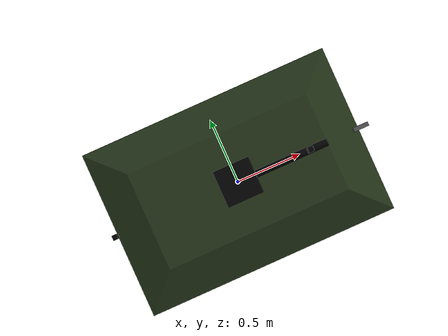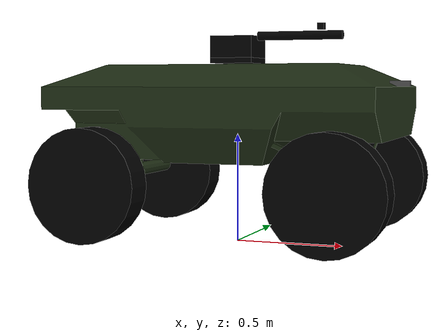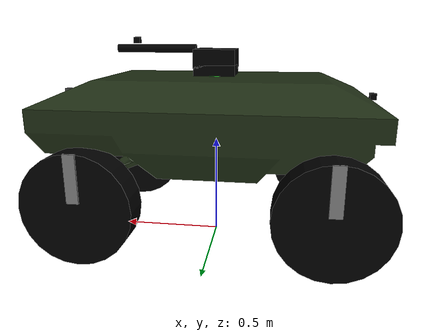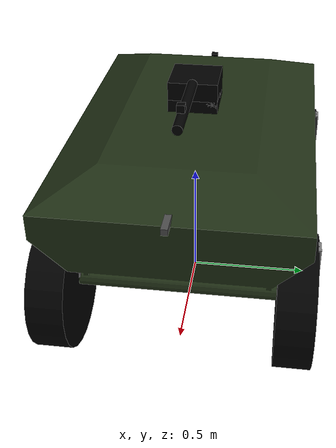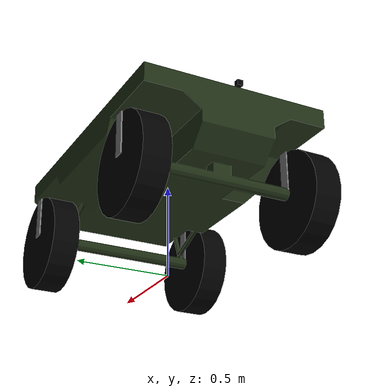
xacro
<?xml version="1.0" encoding="utf-8"?>
<robot name="karamuhafiz" xmlns:xacro="http://www.ros.org/wiki/xacro">

  <!-- gazebo_ros2_control'a verilecek controller yaml yolu (launch'tan gecilir) -->
  <xacro:arg name="controllers_yaml" default=""/>
  <!-- Simülasyon için ölçüm doğrulanana kadar muhafazakâr süspansiyon modeli.
       Gerçek stroke/yay/amortisör değerleri mekanik ölçümle değiştirilmelidir. -->
  <xacro:property name="suspension_stroke" value="0.08"/>
  <xacro:property name="suspension_spring" value="12000.0"/>
  <xacro:property name="suspension_damping" value="600.0"/>

  <!--  MALZEME TANIMLARI                                                 -->
  <material name="blue"><color rgba="0.1 0.1 0.8 1" /></material>
  <material name="black"><color rgba="0 0 0 1"/></material>
  <material name="grey"><color rgba="0.5 0.5 0.5 1"/></material>
  <material name="red"><color rgba="1 0 0 0.8"/></material>
  <material name="dark_grey"><color rgba="0.3 0.3 0.3 1"/></material>
  <material name="green"><color rgba="0.2 0.8 0.2 1"/></material>
  <material name="military_green"><color rgba="0.12 0.18 0.08 1.0"/></material>

  <!--  KM2 FİZİKSEL PARAMETRELERİ                                        -->
  <!--  DÜZELTME (KTR uyum): Önceki SolidWorks export'u FİZİKSEL DEĞİLDİ  -->
  <!--  (gövde 476 kg, teker 18.76 kg → toplam ~573 kg). Muhtemelen CAD   -->
  <!--  malzeme yoğunlukları hatalıydı. KTR §3.1.4 nihai kütle 120 kg.    -->
  <!--  Kütle/atalet ~×0.20 ölçeklenip toplam ~120 kg'a çekildi (I∝m,     -->
  <!--  geometri sabit). CoG yüksekliği KTR h=0.45 m'ye ayarlandı.        -->
  <!--  ⚠️ Bu bir TAHMİN; mekanik ekip doğru yoğunluklarla sw2urdf ile    -->
  <!--     yeniden export edince gerçek değerlerle değiştirin.            -->
  <!-- Gövde kütlesi: ~95 kg  (eski 476.48)                              -->
  <!-- Tekerlek kütlesi (ön): 4.0 kg  (arka): 4.2 kg  (eski 18.76/19.515)-->
  <!-- Tekerlek yarıçapı: 0.2575 m (KTR §3.1.5; tork hesaplarında bilinçli -->
  <!--   kullanılmış). Eski export 0.35 m FİZİKSEL DEĞİLDİ (0.70 m çap ~   -->
  <!--   araç boyu; aynı hatalı export 476 kg veriyordu). Genişlik: 0.143 m-->
  <!--   ⚠️ En iyi tahmin; mekanik ekip GERÇEK aracı ölçüp teyit edecek.   -->
  <!-- İz (track): 0.91 m   Dingil (wheelbase): 1.10 m                     -->
  <!-- Sürtünme μ: 1.0 (gerçekçi lastik-kuru zemin; eski 2.0 hack'ti)      -->

  <!--  BASE_FOOTPRINT (Zemin Referans Noktası)                           -->
  <link name="base_footprint"/>
  <joint name="base_footprint_joint" type="fixed">
    <parent link="base_footprint"/><child link="base_link"/>
    <!-- base_link = tekerlek ekseni + 3cm yer boslugu -->
    <!-- Teker r=0.2575 -> merkez abs=0.2875, alt=0.2875-0.2575=0.03 (zemin ustu) -->
    <origin xyz="0 0 0.2875" rpy="0 0 0"/>
  </joint>

  <!--  BASE_LINK - Ana Gövde (KM2 SolidWorks Verileri)                   -->
  <link name="base_link">
    <inertial>
      <!-- CoM: KTR CoG yüksekliği 0.45 m (zeminden). base_link z=0.2875 → origin z=+0.1625.
           Kütle 476.48→95 (×0.1994); atalet aynı oranla ölçeklendi (I∝m, geometri sabit). -->
      <origin xyz="0 0 0.1625" rpy="0 0 0"/>
      <mass value="95.0"/>
      <inertia ixx="16.33" ixy="0.0" ixz="0.0"
               iyy="21.37" iyz="0.187"
               izz="7.50"/>
    </inertial>
    <visual>
      <!-- SW mesh: -90 Z rot, mesh burun Y=0 tarafı -> ROS +X (ileri) -->
      <!-- offset: x=+0.75(merkez), z=+0.1(bottom=0) -->
      <origin xyz="0.75 0 0.1" rpy="0 0 -1.5708"/>
      <geometry><mesh filename="package://karamuhafiz_base/meshes/base_link.STL"/></geometry>
      <material name="military_green"/>
    </visual>
    <collision>
      <!-- Collision = mesh ortasinda, tekerleklerin USTUNDE ve Y'de tekerlekleri degmeyecek sekilde dar (0.60m) -->
      <origin xyz="0 0 0.27" rpy="0 0 0"/>
      <geometry><box size="1.4 0.60 0.10"/></geometry>
    </collision>
  </link>

  <!-- Gazebo govde rengi: Askeri yesil tonu (Olive Drab) -->
  <gazebo reference="base_link">
    <visual>
      <material>
        <ambient>0.12 0.18 0.08 1.0</ambient>
        <diffuse>0.12 0.18 0.08 1.0</diffuse>
        <specular>0.05 0.05 0.05 1.0</specular>
        <emissive>0.0 0.0 0.0 1.0</emissive>
      </material>
    </visual>
  </gazebo>

  <!--  TEKERLEK MAKROSU (KM2 Ölçüleri)                                   -->
  <!--  Ön tekerlekler: R=0.2575m, W=0.143m, m=4.0kg  (eski 0.35m/18.76kg fiziksel değildi) -->
  <!--  Arka tekerlekler: R=0.2575m, W=0.143m, m=4.2kg (eski 0.35m/19.515kg) -->
  <!--  iyy(front)=0.133 ixx=izz=0.073 | iyy(rear)=0.139 ixx=izz=0.077     -->
  <!--  Atalet silindir formülüyle (spin ekseni Y → iyy en büyük):        -->
  <!--   iyy=0.5·m·r² , ixx=izz=(1/12)·m·(3r²+h²)                          -->
  <xacro:macro name="km2_wheel_link" params="name mass ixx iyy izz">
    <link name="${name}_lw">
      <inertial>
        <mass value="${mass}"/>
        <inertia ixx="${ixx}" ixy="0" ixz="0"
                 iyy="${iyy}" iyz="0"
                 izz="${izz}"/>
      </inertial>
      <visual>
        <origin xyz="0 0 0" rpy="1.5708 0 0"/>
        <geometry><cylinder radius="0.2575" length="0.143"/></geometry>
        <material name="black"/>
      </visual>
      <visual>
        <origin xyz="0.0 0.073 0.147" rpy="0 0 0"/>
        <geometry><box size="0.055 0.012 0.22"/></geometry>
        <material name="grey"/>
      </visual>
      <collision>
        <origin xyz="0 0 0" rpy="1.5708 0 0"/>
        <geometry><cylinder radius="0.2575" length="0.143"/></geometry>
      </collision>
    </link>
    <gazebo reference="${name}_lw">
      <self_collide>false</self_collide>
      <mu1>3.0</mu1>
      <mu2>3.0</mu2>
      <kp>1000000.0</kp>
      <kd>10.0</kd>
      <minDepth>0.002</minDepth>
      <maxVel>20.0</maxVel>
      <material>Gazebo/DarkGrey</material>
    </gazebo>
  </xacro:macro>

  <!-- Ackermann surus: on tekerler direksiyon mafsali uzerinden, arka tekerler sabit aks uzerinden doner. -->
  <xacro:km2_wheel_link name="front_l" mass="4.0" ixx="0.073" iyy="0.133" izz="0.073"/>
  <xacro:km2_wheel_link name="front_r" mass="4.0" ixx="0.073" iyy="0.133" izz="0.073"/>
  <xacro:km2_wheel_link name="rear_l" mass="4.2" ixx="0.077" iyy="0.139" izz="0.077"/>
  <xacro:km2_wheel_link name="rear_r" mass="4.2" ixx="0.077" iyy="0.139" izz="0.077"/>

  <xacro:macro name="km2_suspension_link" params="name">
    <link name="${name}_suspension_link">
      <inertial>
        <mass value="0.5"/>
        <inertia ixx="0.002" ixy="0" ixz="0" iyy="0.002" iyz="0" izz="0.002"/>
      </inertial>
    </link>
    <gazebo reference="${name}_suspension_link">
      <self_collide>false</self_collide>
    </gazebo>
  </xacro:macro>

  <xacro:km2_suspension_link name="front_l"/>
  <xacro:km2_suspension_link name="front_r"/>
  <xacro:km2_suspension_link name="rear_l"/>
  <xacro:km2_suspension_link name="rear_r"/>

  <joint name="front_l_suspension_joint" type="prismatic">
    <parent link="base_link"/><child link="front_l_suspension_link"/>
    <origin xyz="0.55 0.455 0" rpy="0 0 0"/><axis xyz="0 0 1"/>
    <limit lower="-${suspension_stroke}" upper="${suspension_stroke}" effort="4000" velocity="1.0"/>
    <dynamics damping="${suspension_damping}" friction="5.0"/>
  </joint>
  <joint name="front_r_suspension_joint" type="prismatic">
    <parent link="base_link"/><child link="front_r_suspension_link"/>
    <origin xyz="0.55 -0.455 0" rpy="0 0 0"/><axis xyz="0 0 1"/>
    <limit lower="-${suspension_stroke}" upper="${suspension_stroke}" effort="4000" velocity="1.0"/>
    <dynamics damping="${suspension_damping}" friction="5.0"/>
  </joint>
  <joint name="rear_l_suspension_joint" type="prismatic">
    <parent link="base_link"/><child link="rear_l_suspension_link"/>
    <origin xyz="-0.55 0.455 0" rpy="0 0 0"/><axis xyz="0 0 1"/>
    <limit lower="-${suspension_stroke}" upper="${suspension_stroke}" effort="4000" velocity="1.0"/>
    <dynamics damping="${suspension_damping}" friction="5.0"/>
  </joint>
  <joint name="rear_r_suspension_joint" type="prismatic">
    <parent link="base_link"/><child link="rear_r_suspension_link"/>
    <origin xyz="-0.55 -0.455 0" rpy="0 0 0"/><axis xyz="0 0 1"/>
    <limit lower="-${suspension_stroke}" upper="${suspension_stroke}" effort="4000" velocity="1.0"/>
    <dynamics damping="${suspension_damping}" friction="5.0"/>
  </joint>

  <gazebo reference="front_l_suspension_joint"><spring_stiffness>${suspension_spring}</spring_stiffness><spring_reference>0</spring_reference></gazebo>
  <gazebo reference="front_r_suspension_joint"><spring_stiffness>${suspension_spring}</spring_stiffness><spring_reference>0</spring_reference></gazebo>
  <gazebo reference="rear_l_suspension_joint"><spring_stiffness>${suspension_spring}</spring_stiffness><spring_reference>0</spring_reference></gazebo>
  <gazebo reference="rear_r_suspension_joint"><spring_stiffness>${suspension_spring}</spring_stiffness><spring_reference>0</spring_reference></gazebo>

  <link name="front_l_steer_link">
    <inertial>
      <mass value="1.0"/>
      <inertia ixx="0.01" ixy="0" ixz="0" iyy="0.01" iyz="0" izz="0.01"/>
    </inertial>
  </link>
  <link name="front_r_steer_link">
    <inertial>
      <mass value="1.0"/>
      <inertia ixx="0.01" ixy="0" ixz="0" iyy="0.01" iyz="0" izz="0.01"/>
    </inertial>
  </link>

  <joint name="front_l_steer_joint" type="revolute">
    <parent link="front_l_suspension_link"/><child link="front_l_steer_link"/>
    <origin xyz="0 0 0" rpy="0 0 0"/>
    <axis xyz="0 0 1"/>
    <limit lower="-0.6" upper="0.6" effort="2000.0" velocity="2.0"/>
    <dynamics damping="2.0" friction="0.2"/>
  </joint>
  <joint name="front_r_steer_joint" type="revolute">
    <parent link="front_r_suspension_link"/><child link="front_r_steer_link"/>
    <origin xyz="0 0 0" rpy="0 0 0"/>
    <axis xyz="0 0 1"/>
    <limit lower="-0.6" upper="0.6" effort="2000.0" velocity="2.0"/>
    <dynamics damping="2.0" friction="0.2"/>
  </joint>

  <joint name="front_l_joint" type="continuous">
    <parent link="front_l_steer_link"/><child link="front_l_lw"/>
    <origin xyz="0 0 0" rpy="0 0 0"/>
    <axis xyz="0 1 0"/>
    <dynamics damping="0.1" friction="0.1"/>
  </joint>
  <joint name="front_r_joint" type="continuous">
    <parent link="front_r_steer_link"/><child link="front_r_lw"/>
    <origin xyz="0 0 0" rpy="0 0 0"/>
    <axis xyz="0 1 0"/>
    <dynamics damping="0.1" friction="0.1"/>
  </joint>
  <!-- Arka tahrik tekerleri: velocity motoru icin effort limiti SART (yoksa fmax=0,
       476kg arac surulemez, yokusta geri kayar). -->
  <joint name="rear_l_joint" type="continuous">
    <parent link="rear_l_suspension_link"/><child link="rear_l_lw"/>
    <origin xyz="0 0 0" rpy="0 0 0"/>
    <axis xyz="0 1 0"/>
    <!-- effort 1000->2000: rampada gecici tork talebi (kalkis + egim) icin headroom -->
    <limit effort="2000.0" velocity="30.0"/>
    <dynamics damping="0.1" friction="0.1"/>
  </joint>
  <joint name="rear_r_joint" type="continuous">
    <parent link="rear_r_suspension_link"/><child link="rear_r_lw"/>
    <origin xyz="0 0 0" rpy="0 0 0"/>
    <axis xyz="0 1 0"/>
    <limit effort="2000.0" velocity="30.0"/>
    <dynamics damping="0.1" friction="0.1"/>
  </joint>

  <!--  CUBEPILOT IMU LINK (Sensör Füzyon Merkezi)                        -->
  <!--  CubePilot HERE3+ GPS/IMU - Gövde üstüne monte                    -->
  <link name="cubepilot_link">
    <visual>
      <geometry><box size="0.08 0.08 0.04"/></geometry>
      <material name="dark_grey"/>
    </visual>
    <collision>
      <geometry><box size="0.08 0.08 0.04"/></geometry>
    </collision>
    <inertial>
      <mass value="0.3"/>
      <inertia ixx="0.0002" ixy="0" ixz="0"
               iyy="0.0002" iyz="0"
               izz="0.0003"/>
    </inertial>
  </link>
  <joint name="cubepilot_joint" type="fixed">
    <parent link="base_link"/><child link="cubepilot_link"/>
    <!-- Govde ust kismi yakininda (mesh top=0.54) -->
    <origin xyz="0 0 0.49" rpy="0 0 0"/>
  </joint>

  <!-- CubePilot IMU Frame (sensör füzyon referansı) -->
  <link name="imu_link">
    <inertial>
      <mass value="0.01"/>
      <inertia ixx="0.0001" ixy="0" ixz="0"
               iyy="0.0001" iyz="0"
               izz="0.0001"/>
    </inertial>
  </link>
  <joint name="imu_joint" type="fixed">
    <parent link="cubepilot_link"/><child link="imu_link"/>
    <origin xyz="0 0 0" rpy="0 0 0"/>
  </joint>

  <!-- CubePilot GPS Anteni -->
  <link name="gps_link">
    <visual>
      <geometry><cylinder radius="0.04" length="0.02"/></geometry>
      <material name="green"/>
    </visual>
    <inertial>
      <mass value="0.05"/>
      <inertia ixx="0.0001" ixy="0" ixz="0"
               iyy="0.0001" iyz="0"
               izz="0.0001"/>
    </inertial>
  </link>
  <joint name="gps_joint" type="fixed">
    <parent link="cubepilot_link"/><child link="gps_link"/>
    <!-- GPS anteni CubePilot'un üstünde -->
    <origin xyz="0 0 0.04" rpy="0 0 0"/>
  </joint>

  <!--  TARET SİSTEMİ (Değişiklik yok)                                   -->
  <link name="turret_base_link">
    <visual><geometry><box size="0.2 0.2 0.05"/></geometry><material name="black"/></visual>
    <collision><geometry><box size="0.2 0.2 0.05"/></geometry></collision>
    <inertial><mass value="2.0"/><inertia ixx="0.005" ixy="0" ixz="0" iyy="0.005" iyz="0" izz="0.005"/></inertial>
  </link>
  <joint name="turret_base_joint" type="fixed">
    <parent link="base_link"/><child link="turret_base_link"/>
    <!-- Mesh top = 0.54, taret onun ustunde -->
    <origin xyz="0 0 0.57" rpy="0 0 0"/>
  </joint>

  <gazebo reference="turret_base_link">
    <visual>
      <material>
        <ambient>0.0 0.0 0.0 1.0</ambient>
        <diffuse>0.0 0.0 0.0 1.0</diffuse>
        <specular>0.1 0.1 0.1 1.0</specular>
      </material>
    </visual>
  </gazebo>

  <link name="turret_link">
    <visual><geometry><box size="0.2 0.2 0.1"/></geometry><material name="black"/></visual>
    <collision><geometry><box size="0.2 0.2 0.1"/></geometry></collision>
    <inertial><mass value="5.0"/><inertia ixx="0.01" ixy="0" ixz="0" iyy="0.01" iyz="0" izz="0.01"/></inertial>
  </link>
  <joint name="turret_yaw_joint" type="revolute">
    <parent link="turret_base_link"/><child link="turret_link"/>
    <origin xyz="0 0 0.05" rpy="0 0 0"/>
    <axis xyz="0 0 1"/>
    <limit lower="-3.14" upper="3.14" effort="100.0" velocity="1.0"/>
    <dynamics damping="15.0" friction="15.0"/>
  </joint>

  <gazebo reference="turret_link">
    <visual>
      <material>
        <ambient>0.0 0.0 0.0 1.0</ambient>
        <diffuse>0.0 0.0 0.0 1.0</diffuse>
        <specular>0.1 0.1 0.1 1.0</specular>
      </material>
    </visual>
    <gravity>false</gravity>
  </gazebo>

  <link name="barrel_link">
    <visual><origin xyz="0.2 0 0" rpy="0 1.5708 0"/><geometry><cylinder radius="0.02" length="0.4"/></geometry><material name="black"/></visual>
    <collision><origin xyz="0.2 0 0" rpy="0 1.5708 0"/><geometry><cylinder radius="0.02" length="0.4"/></geometry></collision>
    <inertial><mass value="2.0"/><inertia ixx="0.01" ixy="0" ixz="0" iyy="0.01" iyz="0" izz="0.01"/></inertial>
  </link>
  <joint name="barrel_pitch_joint" type="revolute">
    <parent link="turret_link"/><child link="barrel_link"/>
    <origin xyz="0.1 0 0.05" rpy="0 0 0"/>
    <axis xyz="0 1 0"/>
    <limit lower="-0.8" upper="0.5" effort="100.0" velocity="1.0"/>
    <dynamics damping="20.0" friction="20.0"/>
  </joint>

  <gazebo reference="barrel_link">
    <visual>
      <material>
        <ambient>0.0 0.0 0.0 1.0</ambient>
        <diffuse>0.0 0.0 0.0 1.0</diffuse>
        <specular>0.1 0.1 0.1 1.0</specular>
      </material>
    </visual>
    <gravity>false</gravity>
  </gazebo>

  <link name="laser_bullet_link">
    <inertial><mass value="0.001"/><inertia ixx="0.0001" ixy="0" ixz="0" iyy="0.0001" iyz="0" izz="0.0001"/></inertial>
  </link>
  <joint name="laser_bullet_joint" type="fixed">
    <parent link="barrel_link"/><child link="laser_bullet_link"/>
    <origin xyz="0.4 0 0" rpy="0 0 0"/>
  </joint>

  <!--  KAMERA SİSTEMİ                                                    -->
  <!--  - Ön kamera: Derinlik kamerası (depth + RGB) + Nesne algılama     -->
  <!--  - Arka kamera: Standart RGB (değişiklik yok)                      -->
  <!--  - Namlu kamerası: Standart RGB (değişiklik yok)                   -->

  <!-- ÖN DERİNLİK KAMERASI (Intel RealSense D435 tarzı) -->
  <link name="camera_front_link">
    <visual>
      <geometry><box size="0.09 0.025 0.025"/></geometry>
      <material name="dark_grey"/>
    </visual>
    <collision>
      <geometry><box size="0.09 0.025 0.025"/></geometry>
    </collision>
    <inertial>
      <mass value="0.072"/>
      <inertia ixx="0.0001" ixy="0" ixz="0" iyy="0.0001" iyz="0" izz="0.0001"/>
    </inertial>
  </link>
  <joint name="camera_front_link_joint" type="fixed">
    <parent link="base_link"/><child link="camera_front_link"/>
    <origin xyz="0.76 0 0.45" rpy="0 0 0"/>
  </joint>

  <!-- Ön kamera optik frame (ROS konvansiyonu: z=ileri, x=sağ, y=aşağı) -->
  <link name="camera_front_optical_frame">
    <inertial><mass value="0.001"/><inertia ixx="0.0001" ixy="0" ixz="0" iyy="0.0001" iyz="0" izz="0.0001"/></inertial>
  </link>
  <joint name="camera_front_optical_joint" type="fixed">
    <parent link="camera_front_link"/><child link="camera_front_optical_frame"/>
    <origin xyz="0 0 0" rpy="-1.5708 0 -1.5708"/>
  </joint>

  <!-- Level projection frame for the depth-camera-derived LaserScan. -->
  <link name="depth_scan_link">
    <inertial>
      <mass value="0.001"/>
      <inertia ixx="0.0001" ixy="0" ixz="0" iyy="0.0001" iyz="0" izz="0.0001"/>
    </inertial>
  </link>
  <joint name="depth_scan_joint" type="fixed">
    <parent link="base_link"/><child link="depth_scan_link"/>
    <origin xyz="0.76 0 0.45" rpy="0 0 0"/>
  </joint>

  <gazebo reference="camera_front_link">
    <sensor name="cam_front" type="depth">
      <!-- 15 Hz is sufficient for navigation and leaves CPU time for AMCL/TF. -->
      <update_rate>15</update_rate>
      <camera>
        <horizontal_fov>1.211</horizontal_fov>
        <image>
          <width>640</width>
          <height>480</height>
          <format>R8G8B8</format>
        </image>
        <clip>
          <near>0.1</near>
          <far>50.0</far>
        </clip>
      </camera>
      <plugin name="cam_front_plugin" filename="libgazebo_ros_camera.so">
        <ros>
          <remapping>~/image_raw:=/cam_front/image_raw</remapping>
          <remapping>~/depth/image_raw:=/cam_front/depth/image_raw</remapping>
          <remapping>~/camera_info:=/cam_front/camera_info</remapping>
          <remapping>~/depth/camera_info:=/cam_front/depth/camera_info</remapping>
          <remapping>~/points:=/cam_front/points</remapping>
        </ros>
        <frame_name>camera_front_optical_frame</frame_name>
        <min_depth>0.1</min_depth>
        <max_depth>50.0</max_depth>
      </plugin>
    </sensor>
    <material>Gazebo/Black</material>
  </gazebo>

  <xacro:macro name="cam_setup" params="name link_name parent x y z topic info_topic yaw hfov:=1.089">
    <link name="${link_name}">
      <visual>
        <geometry><box size="0.03 0.03 0.03"/></geometry>
        <material name="black"/>
      </visual>
      <inertial><mass value="0.01"/><inertia ixx="0.0001" ixy="0" ixz="0" iyy="0.0001" iyz="0" izz="0.0001"/></inertial>
    </link>
    <joint name="${link_name}_joint" type="fixed">
      <parent link="${parent}"/><child link="${link_name}"/>
      <origin xyz="${x} ${y} ${z}" rpy="0 0 ${yaw}"/>
    </joint>
    <gazebo reference="${link_name}">
      <sensor name="${name}" type="camera">
        <update_rate>30</update_rate>
        <camera>
          <horizontal_fov>${hfov}</horizontal_fov>
          <image><width>640</width><height>480</height><format>R8G8B8</format></image>
        </camera>
        <plugin name="${name}_plugin" filename="libgazebo_ros_camera.so">
          <ros>
            <remapping>~/image_raw:=${topic}</remapping>
            <remapping>~/camera_info:=${info_topic}</remapping>
          </ros>
        </plugin>
      </sensor>
      <material>Gazebo/Black</material>
    </gazebo>
  </xacro:macro>

  <xacro:cam_setup name="cam_rear"   link_name="camera_rear_link"   parent="base_link"   x="-0.76" y="0" z="0.45"  topic="/cam_rear/image_raw" info_topic="/cam_rear/camera_info" yaw="3.1415"/>
  <!-- Nişan kamerası: dar FOV (~20°) — 10 m'de iç halka ~11 px, 50p nişan için gerekli -->
  <xacro:cam_setup name="cam_barrel" link_name="camera_barrel_link" parent="barrel_link" x="0.3"  y="0" z="0.04" topic="/cam_barrel/image_raw" info_topic="/cam_barrel/camera_info" yaw="0" hfov="0.35"/>

  <!--  CUBEPILOT IMU GAZEBO PLUGIN                                       -->
  <!--  Sensör füzyon verisi: IMU + GPS -> EKF                            -->
  <gazebo reference="imu_link">
    <gravity>true</gravity>
    <sensor name="cubepilot_imu" type="imu">
      <always_on>true</always_on>
      <update_rate>100</update_rate>
      <visualize>false</visualize>
      <plugin name="imu_plugin" filename="libgazebo_ros_imu_sensor.so">
        <ros>
          <remapping>~/out:=imu/data</remapping>
        </ros>
        <frame_name>imu_link</frame_name>
        <initial_orientation_as_reference>false</initial_orientation_as_reference>
      </plugin>
      <imu>
        <angular_velocity>
          <x><noise type="gaussian"><mean>0.0</mean><stddev>2e-4</stddev></noise></x>
          <y><noise type="gaussian"><mean>0.0</mean><stddev>2e-4</stddev></noise></y>
          <z><noise type="gaussian"><mean>0.0</mean><stddev>2e-4</stddev></noise></z>
        </angular_velocity>
        <linear_acceleration>
          <x><noise type="gaussian"><mean>0.0</mean><stddev>1.7e-2</stddev></noise></x>
          <y><noise type="gaussian"><mean>0.0</mean><stddev>1.7e-2</stddev></noise></y>
          <z><noise type="gaussian"><mean>0.0</mean><stddev>1.7e-2</stddev></noise></z>
        </linear_acceleration>
      </imu>
    </sensor>
  </gazebo>

  <!-- CubePilot GPS Gazebo Plugin -->
  <gazebo reference="gps_link">
    <sensor name="cubepilot_gps" type="gps">
      <always_on>true</always_on>
      <update_rate>5</update_rate>
      <plugin name="gps_plugin" filename="libgazebo_ros_gps_sensor.so">
        <ros>
          <remapping>~/out:=gps/fix</remapping>
        </ros>
        <frame_name>gps_link</frame_name>
      </plugin>
    </sensor>
  </gazebo>

  <!--  SONAR (HC-SR04) SENSÖRLERİ (360° Çevre Koruması)                   -->
  <!-- Toplam altı sensör: iki ön köşe + iki arka köşe (yana bakar), ve    -->
  <!-- iki arka-merkez sensör (arkaya bakar, geri manevra körlüğünü        -->
  <!-- kapatır). Sensörler tekerleklerin üzerinde değil, gövde tampon      -->
  <!-- köşelerindedir. Hepsi collision_monitor'a range kaynağı olarak,     -->
  <!-- ayrıca local costmap'e RangeSensorLayer üzerinden bağlanır.         -->
  <xacro:macro name="corner_sonar" params="name x y yaw">
    <link name="${name}_link">
      <visual>
        <geometry><box size="0.02 0.04 0.02"/></geometry>
        <material name="dark_grey"/>
      </visual>
    </link>
    <joint name="${name}_joint" type="fixed">
      <parent link="base_link"/><child link="${name}_link"/>
      <origin xyz="${x} ${y} 0.35" rpy="0 0 ${yaw}"/>
    </joint>
    <gazebo reference="${name}_link">
      <sensor type="ray" name="${name}">
        <visualize>true</visualize>
        <update_rate>15</update_rate>
        <ray>
          <scan>
            <horizontal>
              <samples>12</samples>
              <resolution>1</resolution>
              <min_angle>-0.26</min_angle>
              <max_angle>0.26</max_angle>
            </horizontal>
          </scan>
          <range><min>0.02</min><max>4.0</max><resolution>0.01</resolution></range>
        </ray>
        <plugin name="gazebo_ros_${name}" filename="libgazebo_ros_ray_sensor.so">
          <ros><remapping>~/out:=${name}</remapping></ros>
          <output_type>sensor_msgs/Range</output_type>
          <radiation_type>ultrasound</radiation_type>
          <frame_name>${name}_link</frame_name>
        </plugin>
      </sensor>
    </gazebo>
  </xacro:macro>

  <xacro:corner_sonar name="sonar_corner_front_left"
                      x="0.70" y="0.48" yaw="1.5708"/>
  <xacro:corner_sonar name="sonar_corner_front_right"
                      x="0.70" y="-0.48" yaw="-1.5708"/>
  <xacro:corner_sonar name="sonar_corner_rear_left"
                      x="-0.70" y="0.48" yaw="1.5708"/>
  <xacro:corner_sonar name="sonar_corner_rear_right"
                      x="-0.70" y="-0.48" yaw="-1.5708"/>

  <!-- Arka-merkez sensörler: doğrudan geriye bakar (yaw≈±180°, 0.15 rad -->
  <!-- dışa açı ile köşe sensörleriyle örtüşmeyi azaltır). Arka tampon    -->
  <!-- x=-0.72; ±0.30 m yanal + ±0.26 rad FOV, 1.06 m arka genişliği      -->
  <!-- ~0.5 m mesafeden itibaren tam kapatır (kör geri manevra koruması). -->
  <xacro:corner_sonar name="sonar_rear_left"
                      x="-0.72" y="0.30" yaw="${pi - 0.15}"/>
  <xacro:corner_sonar name="sonar_rear_right"
                      x="-0.72" y="-0.30" yaw="${-pi + 0.15}"/>

  <!--  DERINLIK KAMERASINI LASERSCAN CEVIRME REFERANSI                   -->
  <!--  depthimage_to_laserscan paketi ile cam_front/depth/image_raw      -->
  <!--  topicini /scan topicine ceviriyoruz (LiDAR yerine)                -->
  <!--  Bu node launch dosyasinda calistirilir.                           -->
  <!--  Detaylar icin sim_launch.py dosyasina bakiniz.                    -->

  <!--  ROS2_CONTROL DONANIM ARAYUZU (Gazebo Classic)                     -->
  <!--  RWD Ackermann: arka tekerler velocity (traksiyon),                -->
  <!--  on direksiyon joint'leri position, on tekerler serbest (state).   -->
  <ros2_control name="GazeboSystem" type="system">
    <hardware>
      <plugin>gazebo_ros2_control/GazeboSystem</plugin>
    </hardware>

    <joint name="front_l_suspension_joint">
      <state_interface name="position"/>
      <state_interface name="velocity"/>
    </joint>
    <joint name="front_r_suspension_joint">
      <state_interface name="position"/>
      <state_interface name="velocity"/>
    </joint>
    <joint name="rear_l_suspension_joint">
      <state_interface name="position"/>
      <state_interface name="velocity"/>
    </joint>
    <joint name="rear_r_suspension_joint">
      <state_interface name="position"/>
      <state_interface name="velocity"/>
    </joint>

    <!-- Arka tahrik tekerleri: hiz komutu -->
    <joint name="rear_l_joint">
      <command_interface name="velocity"/>
      <state_interface name="position"/>
      <state_interface name="velocity"/>
    </joint>
    <joint name="rear_r_joint">
      <command_interface name="velocity"/>
      <state_interface name="position"/>
      <state_interface name="velocity"/>
    </joint>

    <!-- On direksiyon mafsallari: pozisyon komutu (Ackermann acilari) -->
    <joint name="front_l_steer_joint">
      <command_interface name="position"/>
      <state_interface name="position"/>
      <state_interface name="velocity"/>
    </joint>
    <joint name="front_r_steer_joint">
      <command_interface name="position"/>
      <state_interface name="position"/>
      <state_interface name="velocity"/>
    </joint>

    <!-- On tekerler: komutsuz, yerden temasla serbest doner (RWD'de gercekci) -->
    <joint name="front_l_joint">
      <state_interface name="position"/>
      <state_interface name="velocity"/>
    </joint>
    <joint name="front_r_joint">
      <state_interface name="position"/>
      <state_interface name="velocity"/>
    </joint>
  </ros2_control>

  <!--  GAZEBO PLUGINLERİ                                                 -->
  <gazebo>
    <!-- ros2_control: controller_manager'i Gazebo icinde calistirir.          -->
    <!-- ackermann_steering_controller + joint_state_broadcaster yuklenir.      -->
    <!-- /odom ve odom->base_footprint TF'i bu controller yayinlar.             -->
    <plugin filename="libgazebo_ros2_control.so" name="gazebo_ros2_control">
      <parameters>$(arg controllers_yaml)</parameters>
      <robot_param>robot_description</robot_param>
      <robot_param_node>robot_state_publisher</robot_param_node>
    </plugin>

    <!-- Turret/barrel joint durumlarini /joint_states'e yayinlar (bu joint'ler -->
    <!-- ros2_control'de degil, asagidaki barrel plugin'i ile surulur). Surus/   -->
    <!-- direksiyon joint'leri joint_state_broadcaster tarafindan yayinlanir;    -->
    <!-- robot_state_publisher ikisini isme gore birlestirir.                    -->
    <plugin name="gazebo_joint_state" filename="libgazebo_ros_joint_state_publisher.so">
      <ros>
        <remapping>~/out:=joint_states</remapping>
      </ros>
      <update_rate>50</update_rate>
      <joint_name>turret_yaw_joint</joint_name>
      <joint_name>barrel_pitch_joint</joint_name>
    </plugin>

    <plugin name="gt_p3d" filename="libgazebo_ros_p3d.so">
      <ros>
        <remapping>odom:=/ground_truth/state</remapping>
      </ros>
      <body_name>base_footprint</body_name>
      <!-- world'e gore olcer (kanonik ground-truth). world==map (spawn pozu eski
           statik map->odom ile birebir ayni) oldugundan poz dogrudan map->base'tir. -->
      <frame_name>world</frame_name>
      <update_rate>50.0</update_rate>
      <gaussian_noise>0.0</gaussian_noise>
    </plugin>

    <!-- Barrel/turret pozisyon kontrolu (barrel_controller.py -> barrel_trajectory) -->
    <plugin name="gazebo_joint_ctrl" filename="libgazebo_ros_joint_pose_trajectory.so">
      <ros>
        <remapping>set_joint_trajectory:=barrel_trajectory</remapping>
      </ros>
      <update_rate>50</update_rate>
      <reference_link>base_footprint</reference_link>
      <joint_name>turret_yaw_joint</joint_name>
      <joint_name>barrel_pitch_joint</joint_name>
    </plugin>
  </gazebo>

</robot>
